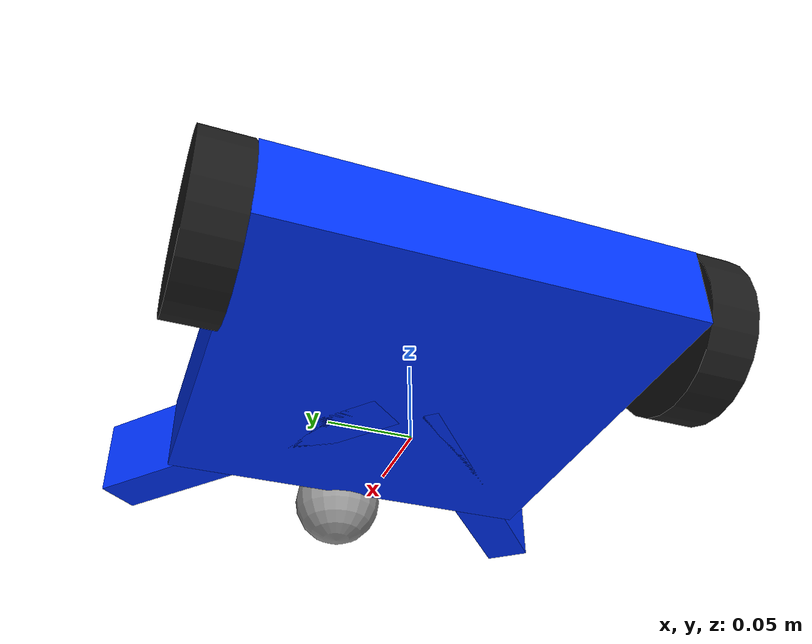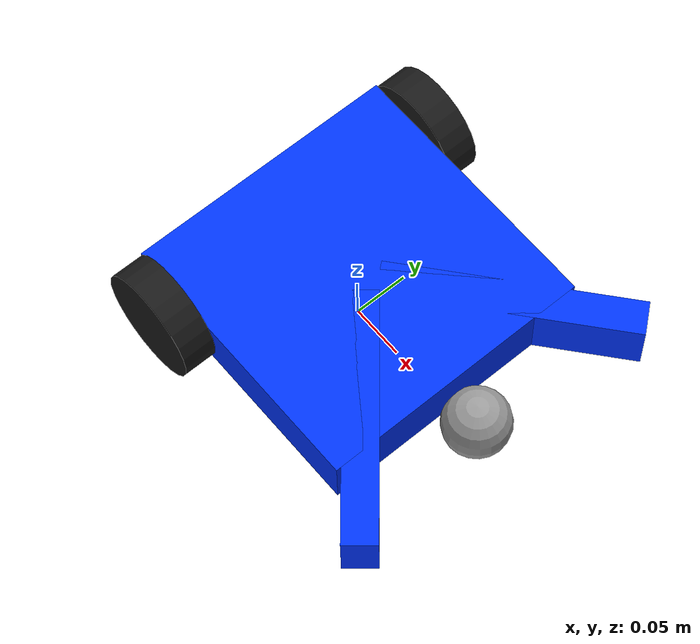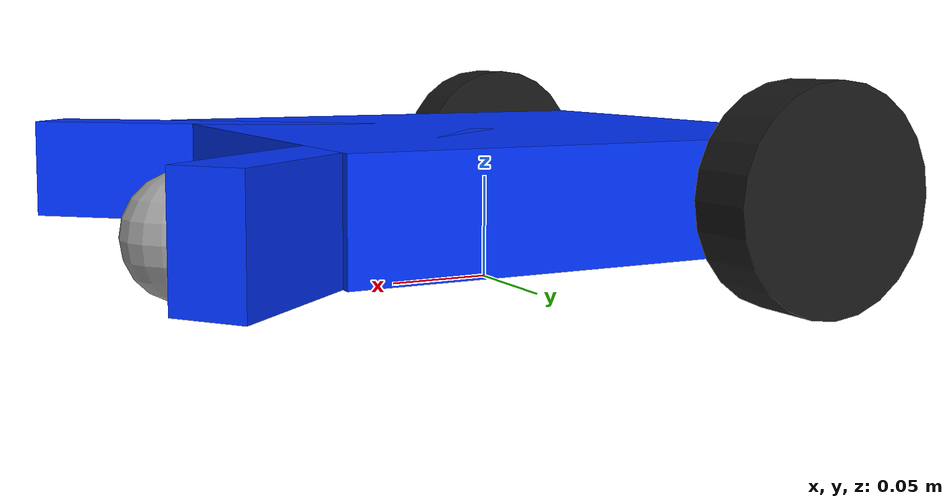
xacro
<?xml version="1.0"?>
<robot xmlns:xacro="http://www.ros.org/wiki/xacro" name="triangle_bot">

  <xacro:property name="base_length" value="0.25"/>
  <xacro:property name="base_width" value="0.25"/>
  <xacro:property name="base_height" value="0.05"/>
  <xacro:property name="base_z" value="0.05"/>
  <xacro:property name="base_mass" value="3.0"/>
  <xacro:property name="base_inertia" value="0.02"/>

  <xacro:property name="body_length" value="0.22"/>
  <xacro:property name="body_width" value="0.03"/>

  <xacro:property name="wheel_radius" value="0.05"/>
  <xacro:property name="wheel_length" value="0.03"/>
  <xacro:property name="wheel_mass" value="0.5"/>
  <xacro:property name="wheel_inertia" value="0.001"/>

  <xacro:property name="caster_radius" value="0.03"/>
  <xacro:property name="caster_mass" value="0.2"/>
  <xacro:property name="caster_inertia" value="0.0001"/>

  <material name="blue">
    <color rgba="0.0 0.2 1.0 1.0"/>
  </material>

  <material name="black">
    <color rgba="0.1 0.1 0.1 1.0"/>
  </material>

  <material name="gray">
    <color rgba="0.6 0.6 0.6 1.0"/>
  </material>

  <link name="base_link">
    <visual>
      <origin xyz="0 0 ${base_z}"/>
      <geometry>
        <box size="${base_length} ${base_width} ${base_height}"/>
      </geometry>
      <material name="blue"/>
    </visual>
    <collision>
      <origin xyz="0 0 ${base_z}"/>
      <geometry>
        <box size="${base_length} ${base_width} ${base_height}"/>
      </geometry>
    </collision>
    <inertial>
      <origin xyz="0 0 ${base_z}"/>
      <mass value="${base_mass}"/>
      <inertia
        ixx="${base_inertia}"
        ixy="0"
        ixz="0"
        iyy="${base_inertia}"
        iyz="0"
        izz="${base_inertia}"/>
    </inertial>
  </link>

  <link name="left_body">
    <visual>
      <origin xyz="0.10 0.08 ${base_z}"
              rpy="0 0 0.7"/>
      <geometry>
        <box size="${body_length} ${body_width} ${base_height}"/>
      </geometry>
      <material name="blue"/>
    </visual>
  </link>

  <joint name="left_body_joint" type="fixed">
    <parent link="base_link"/>
    <child link="left_body"/>
    <origin xyz="0 0 0"/>
  </joint>

  <link name="right_body">
    <visual>
      <origin xyz="0.10 -0.08 ${base_z}"
              rpy="0 0 -0.7"/>
      <geometry>
        <box size="${body_length} ${body_width} ${base_height}"/>
      </geometry>
      <material name="blue"/>
    </visual>
  </link>

  <joint name="right_body_joint" type="fixed">
    <parent link="base_link"/>
    <child link="right_body"/>
    <origin xyz="0 0 0"/>
  </joint>

  <link name="left_wheel">
    <visual>
      <origin rpy="1.5708 0 0"/>
      <geometry>
        <cylinder radius="${wheel_radius}"
                  length="${wheel_length}"/>
      </geometry>
      <material name="black"/>
    </visual>
    <collision>
      <origin rpy="1.5708 0 0"/>
      <geometry>
        <cylinder radius="${wheel_radius}"
                  length="${wheel_length}"/>
      </geometry>
    </collision>
    <inertial>
      <mass value="${wheel_mass}"/>
      <inertia
        ixx="${wheel_inertia}"
        ixy="0"
        ixz="0"
        iyy="${wheel_inertia}"
        iyz="0"
        izz="${wheel_inertia}"/>
    </inertial>
  </link>

  <joint name="left_wheel_joint" type="continuous">
    <parent link="base_link"/>
    <child link="left_wheel"/>
    <origin xyz="-0.08 0.14 ${base_z}"/>
    <axis xyz="0 1 0"/>
  </joint>

  <link name="right_wheel">
    <visual>
      <origin rpy="1.5708 0 0"/>
      <geometry>
        <cylinder radius="${wheel_radius}"
                  length="${wheel_length}"/>
      </geometry>
      <material name="black"/>
    </visual>
    <collision>
      <origin rpy="1.5708 0 0"/>
      <geometry>
        <cylinder radius="${wheel_radius}"
                  length="${wheel_length}"/>
      </geometry>
    </collision>
    <inertial>
      <mass value="${wheel_mass}"/>
      <inertia
        ixx="${wheel_inertia}"
        ixy="0"
        ixz="0"
        iyy="${wheel_inertia}"
        iyz="0"
        izz="${wheel_inertia}"/>
    </inertial>
  </link>

  <joint name="right_wheel_joint" type="continuous">
    <parent link="base_link"/>
    <child link="right_wheel"/>
    <origin xyz="-0.08 -0.14 ${base_z}"/>
    <axis xyz="0 1 0"/>
  </joint>

  <link name="caster_wheel">
    <visual>
      <geometry>
        <sphere radius="${caster_radius}"/>
      </geometry>
      <material name="gray"/>
    </visual>
    <collision>
      <geometry>
        <sphere radius="${caster_radius}"/>
      </geometry>
    </collision>
    <inertial>
      <mass value="${caster_mass}"/>
      <inertia
        ixx="${caster_inertia}"
        ixy="0"
        ixz="0"
        iyy="${caster_inertia}"
        iyz="0"
        izz="${caster_inertia}"/>
    </inertial>
  </link>

  <joint name="caster_joint" type="fixed">
    <parent link="base_link"/>
    <child link="caster_wheel"/>
    <origin xyz="0.15 0 ${caster_radius}"/>
  </joint>

</robot>
